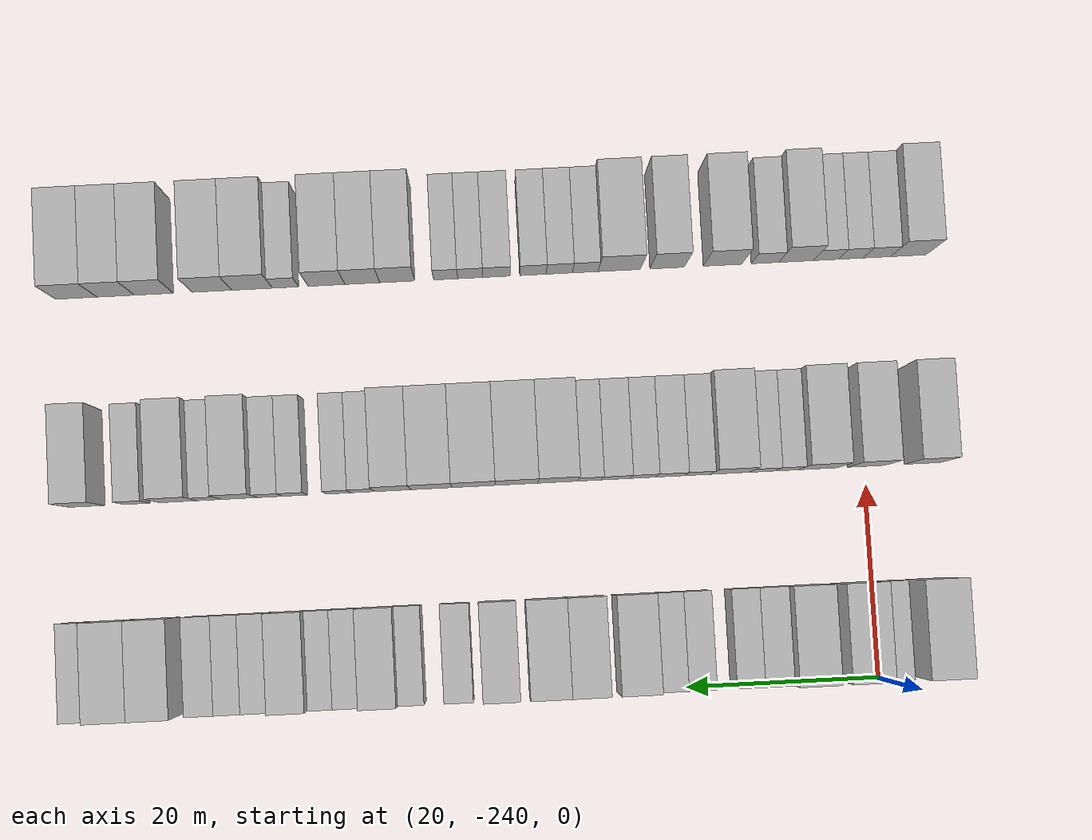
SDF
<sdf version="1.6">
 <world name="default">
  <model name="building_1">
   <static>1</static>
   <pose>25.0000 -245.7570 0 0.000000 0.000000 0.000000</pose>
   <link name="link">
    <pose>0 0 4.50 0 0 0</pose>
    <collision name="collision"><geometry><box><size>10.0000 4.4859 9.0000</size></box></geometry></collision>
    <visual name="visual">
     <cast_shadows>0</cast_shadows>
     <geometry><box><size>10.0000 4.4859 9.0000</size></box></geometry>
     <material>
      <script>
       <uri>model://HANNAS_wall/materials/scripts</uri>
       <uri>model://HANNAS_wall/materials/textures</uri>
       <name>vrc/HANNAS_wall</name>
      </script>
     </material>
    </visual>
   </link>
  </model>
  <model name="building_2">
   <static>1</static>
   <pose>25.0000 -241.2803 0 0.000000 0.000000 0.000000</pose>
   <link name="link">
    <pose>0 0 3.00 0 0 0</pose>
    <collision name="collision"><geometry><box><size>10.0000 2.4675 6.0000</size></box></geometry></collision>
    <visual name="visual">
     <cast_shadows>0</cast_shadows>
     <geometry><box><size>10.0000 2.4675 6.0000</size></box></geometry>
     <material>
      <script>
       <uri>model://HANNAS_wall/materials/scripts</uri>
       <uri>model://HANNAS_wall/materials/textures</uri>
       <name>vrc/HANNAS_wall</name>
      </script>
     </material>
    </visual>
   </link>
  </model>
  <model name="building_3">
   <static>1</static>
   <pose>25.0000 -237.8687 0 0.000000 0.000000 0.000000</pose>
   <link name="link">
    <pose>0 0 4.50 0 0 0</pose>
    <collision name="collision"><geometry><box><size>10.0000 4.3557 9.0000</size></box></geometry></collision>
    <visual name="visual">
     <cast_shadows>0</cast_shadows>
     <geometry><box><size>10.0000 4.3557 9.0000</size></box></geometry>
     <material>
      <script>
       <uri>model://HANNAS_wall/materials/scripts</uri>
       <uri>model://HANNAS_wall/materials/textures</uri>
       <name>vrc/HANNAS_wall</name>
      </script>
     </material>
    </visual>
   </link>
  </model>
  <model name="building_4">
   <static>1</static>
   <pose>25.0000 -232.5526 0 0.000000 0.000000 0.000000</pose>
   <link name="link">
    <pose>0 0 4.50 0 0 0</pose>
    <collision name="collision"><geometry><box><size>10.0000 4.2767 9.0000</size></box></geometry></collision>
    <visual name="visual">
     <cast_shadows>0</cast_shadows>
     <geometry><box><size>10.0000 4.2767 9.0000</size></box></geometry>
     <material>
      <script>
       <uri>model://HANNAS_wall/materials/scripts</uri>
       <uri>model://HANNAS_wall/materials/textures</uri>
       <name>vrc/HANNAS_wall</name>
      </script>
     </material>
    </visual>
   </link>
  </model>
  <model name="building_5">
   <static>1</static>
   <pose>25.0000 -228.9279 0 0.000000 0.000000 0.000000</pose>
   <link name="link">
    <pose>0 0 3.00 0 0 0</pose>
    <collision name="collision"><geometry><box><size>10.0000 2.9727 6.0000</size></box></geometry></collision>
    <visual name="visual">
     <cast_shadows>0</cast_shadows>
     <geometry><box><size>10.0000 2.9727 6.0000</size></box></geometry>
     <material>
      <script>
       <uri>model://HANNAS_wall/materials/scripts</uri>
       <uri>model://HANNAS_wall/materials/textures</uri>
       <name>vrc/HANNAS_wall</name>
      </script>
     </material>
    </visual>
   </link>
  </model>
  <model name="building_6">
   <static>1</static>
   <pose>25.0000 -226.0034 0 0.000000 0.000000 0.000000</pose>
   <link name="link">
    <pose>0 0 3.00 0 0 0</pose>
    <collision name="collision"><geometry><box><size>10.0000 2.8763 6.0000</size></box></geometry></collision>
    <visual name="visual">
     <cast_shadows>0</cast_shadows>
     <geometry><box><size>10.0000 2.8763 6.0000</size></box></geometry>
     <material>
      <script>
       <uri>model://HANNAS_wall/materials/scripts</uri>
       <uri>model://HANNAS_wall/materials/textures</uri>
       <name>vrc/HANNAS_wall</name>
      </script>
     </material>
    </visual>
   </link>
  </model>
  <model name="building_7">
   <static>1</static>
   <pose>25.0000 -221.1476 0 0.000000 0.000000 0.000000</pose>
   <link name="link">
    <pose>0 0 3.00 0 0 0</pose>
    <collision name="collision"><geometry><box><size>10.0000 2.8353 6.0000</size></box></geometry></collision>
    <visual name="visual">
     <cast_shadows>0</cast_shadows>
     <geometry><box><size>10.0000 2.8353 6.0000</size></box></geometry>
     <material>
      <script>
       <uri>model://HANNAS_wall/materials/scripts</uri>
       <uri>model://HANNAS_wall/materials/textures</uri>
       <name>vrc/HANNAS_wall</name>
      </script>
     </material>
    </visual>
   </link>
  </model>
  <model name="building_8">
   <static>1</static>
   <pose>25.0000 -218.2944 0 0.000000 0.000000 0.000000</pose>
   <link name="link">
    <pose>0 0 3.00 0 0 0</pose>
    <collision name="collision"><geometry><box><size>10.0000 2.8711 6.0000</size></box></geometry></collision>
    <visual name="visual">
     <cast_shadows>0</cast_shadows>
     <geometry><box><size>10.0000 2.8711 6.0000</size></box></geometry>
     <material>
      <script>
       <uri>model://HANNAS_wall/materials/scripts</uri>
       <uri>model://HANNAS_wall/materials/textures</uri>
       <name>vrc/HANNAS_wall</name>
      </script>
     </material>
    </visual>
   </link>
  </model>
  <model name="building_9">
   <static>1</static>
   <pose>25.0000 -214.8184 0 0.000000 0.000000 0.000000</pose>
   <link name="link">
    <pose>0 0 4.50 0 0 0</pose>
    <collision name="collision"><geometry><box><size>10.0000 4.0810 9.0000</size></box></geometry></collision>
    <visual name="visual">
     <cast_shadows>0</cast_shadows>
     <geometry><box><size>10.0000 4.0810 9.0000</size></box></geometry>
     <material>
      <script>
       <uri>model://HANNAS_wall/materials/scripts</uri>
       <uri>model://HANNAS_wall/materials/textures</uri>
       <name>vrc/HANNAS_wall</name>
      </script>
     </material>
    </visual>
   </link>
  </model>
  <model name="building_10">
   <static>1</static>
   <pose>25.0000 -209.8260 0 0.000000 0.000000 0.000000</pose>
   <link name="link">
    <pose>0 0 4.50 0 0 0</pose>
    <collision name="collision"><geometry><box><size>10.0000 3.9037 9.0000</size></box></geometry></collision>
    <visual name="visual">
     <cast_shadows>0</cast_shadows>
     <geometry><box><size>10.0000 3.9037 9.0000</size></box></geometry>
     <material>
      <script>
       <uri>model://HANNAS_wall/materials/scripts</uri>
       <uri>model://HANNAS_wall/materials/textures</uri>
       <name>vrc/HANNAS_wall</name>
      </script>
     </material>
    </visual>
   </link>
  </model>
  <model name="building_11">
   <static>1</static>
   <pose>25.0000 -205.7910 0 0.000000 0.000000 0.000000</pose>
   <link name="link">
    <pose>0 0 4.50 0 0 0</pose>
    <collision name="collision"><geometry><box><size>10.0000 4.1664 9.0000</size></box></geometry></collision>
    <visual name="visual">
     <cast_shadows>0</cast_shadows>
     <geometry><box><size>10.0000 4.1664 9.0000</size></box></geometry>
     <material>
      <script>
       <uri>model://HANNAS_wall/materials/scripts</uri>
       <uri>model://HANNAS_wall/materials/textures</uri>
       <name>vrc/HANNAS_wall</name>
      </script>
     </material>
    </visual>
   </link>
  </model>
  <model name="building_12">
   <static>1</static>
   <pose>25.0000 -200.8387 0 0.000000 0.000000 0.000000</pose>
   <link name="link">
    <pose>0 0 4.50 0 0 0</pose>
    <collision name="collision"><geometry><box><size>10.0000 3.7381 9.0000</size></box></geometry></collision>
    <visual name="visual">
     <cast_shadows>0</cast_shadows>
     <geometry><box><size>10.0000 3.7381 9.0000</size></box></geometry>
     <material>
      <script>
       <uri>model://HANNAS_wall/materials/scripts</uri>
       <uri>model://HANNAS_wall/materials/textures</uri>
       <name>vrc/HANNAS_wall</name>
      </script>
     </material>
    </visual>
   </link>
  </model>
  <model name="building_13">
   <static>1</static>
   <pose>25.0000 -196.4818 0 0.000000 0.000000 0.000000</pose>
   <link name="link">
    <pose>0 0 3.00 0 0 0</pose>
    <collision name="collision"><geometry><box><size>10.0000 2.9758 6.0000</size></box></geometry></collision>
    <visual name="visual">
     <cast_shadows>0</cast_shadows>
     <geometry><box><size>10.0000 2.9758 6.0000</size></box></geometry>
     <material>
      <script>
       <uri>model://HANNAS_wall/materials/scripts</uri>
       <uri>model://HANNAS_wall/materials/textures</uri>
       <name>vrc/HANNAS_wall</name>
      </script>
     </material>
    </visual>
   </link>
  </model>
  <model name="building_14">
   <static>1</static>
   <pose>25.0000 -191.6625 0 0.000000 0.000000 0.000000</pose>
   <link name="link">
    <pose>0 0 3.00 0 0 0</pose>
    <collision name="collision"><geometry><box><size>10.0000 2.6628 6.0000</size></box></geometry></collision>
    <visual name="visual">
     <cast_shadows>0</cast_shadows>
     <geometry><box><size>10.0000 2.6628 6.0000</size></box></geometry>
     <material>
      <script>
       <uri>model://HANNAS_wall/materials/scripts</uri>
       <uri>model://HANNAS_wall/materials/textures</uri>
       <name>vrc/HANNAS_wall</name>
      </script>
     </material>
    </visual>
   </link>
  </model>
  <model name="building_15">
   <static>1</static>
   <pose>25.0000 -188.4330 0 0.000000 0.000000 0.000000</pose>
   <link name="link">
    <pose>0 0 4.50 0 0 0</pose>
    <collision name="collision"><geometry><box><size>10.0000 3.7962 9.0000</size></box></geometry></collision>
    <visual name="visual">
     <cast_shadows>0</cast_shadows>
     <geometry><box><size>10.0000 3.7962 9.0000</size></box></geometry>
     <material>
      <script>
       <uri>model://HANNAS_wall/materials/scripts</uri>
       <uri>model://HANNAS_wall/materials/textures</uri>
       <name>vrc/HANNAS_wall</name>
      </script>
     </material>
    </visual>
   </link>
  </model>
  <model name="building_16">
   <static>1</static>
   <pose>25.0000 -185.1406 0 0.000000 0.000000 0.000000</pose>
   <link name="link">
    <pose>0 0 3.00 0 0 0</pose>
    <collision name="collision"><geometry><box><size>10.0000 2.7887 6.0000</size></box></geometry></collision>
    <visual name="visual">
     <cast_shadows>0</cast_shadows>
     <geometry><box><size>10.0000 2.7887 6.0000</size></box></geometry>
     <material>
      <script>
       <uri>model://HANNAS_wall/materials/scripts</uri>
       <uri>model://HANNAS_wall/materials/textures</uri>
       <name>vrc/HANNAS_wall</name>
      </script>
     </material>
    </visual>
   </link>
  </model>
  <model name="building_17">
   <static>1</static>
   <pose>25.0000 -182.4966 0 0.000000 0.000000 0.000000</pose>
   <link name="link">
    <pose>0 0 3.00 0 0 0</pose>
    <collision name="collision"><geometry><box><size>10.0000 2.4991 6.0000</size></box></geometry></collision>
    <visual name="visual">
     <cast_shadows>0</cast_shadows>
     <geometry><box><size>10.0000 2.4991 6.0000</size></box></geometry>
     <material>
      <script>
       <uri>model://HANNAS_wall/materials/scripts</uri>
       <uri>model://HANNAS_wall/materials/textures</uri>
       <name>vrc/HANNAS_wall</name>
      </script>
     </material>
    </visual>
   </link>
  </model>
  <model name="building_18">
   <static>1</static>
   <pose>25.0000 -179.3472 0 0.000000 0.000000 0.000000</pose>
   <link name="link">
    <pose>0 0 4.50 0 0 0</pose>
    <collision name="collision"><geometry><box><size>10.0000 3.7998 9.0000</size></box></geometry></collision>
    <visual name="visual">
     <cast_shadows>0</cast_shadows>
     <geometry><box><size>10.0000 3.7998 9.0000</size></box></geometry>
     <material>
      <script>
       <uri>model://HANNAS_wall/materials/scripts</uri>
       <uri>model://HANNAS_wall/materials/textures</uri>
       <name>vrc/HANNAS_wall</name>
      </script>
     </material>
    </visual>
   </link>
  </model>
  <model name="building_19">
   <static>1</static>
   <pose>25.0000 -175.9523 0 0.000000 0.000000 0.000000</pose>
   <link name="link">
    <pose>0 0 3.00 0 0 0</pose>
    <collision name="collision"><geometry><box><size>10.0000 2.9900 6.0000</size></box></geometry></collision>
    <visual name="visual">
     <cast_shadows>0</cast_shadows>
     <geometry><box><size>10.0000 2.9900 6.0000</size></box></geometry>
     <material>
      <script>
       <uri>model://HANNAS_wall/materials/scripts</uri>
       <uri>model://HANNAS_wall/materials/textures</uri>
       <name>vrc/HANNAS_wall</name>
      </script>
     </material>
    </visual>
   </link>
  </model>
  <model name="building_20">
   <static>1</static>
   <pose>25.0000 -173.1057 0 0.000000 0.000000 0.000000</pose>
   <link name="link">
    <pose>0 0 3.00 0 0 0</pose>
    <collision name="collision"><geometry><box><size>10.0000 2.7034 6.0000</size></box></geometry></collision>
    <visual name="visual">
     <cast_shadows>0</cast_shadows>
     <geometry><box><size>10.0000 2.7034 6.0000</size></box></geometry>
     <material>
      <script>
       <uri>model://HANNAS_wall/materials/scripts</uri>
       <uri>model://HANNAS_wall/materials/textures</uri>
       <name>vrc/HANNAS_wall</name>
      </script>
     </material>
    </visual>
   </link>
  </model>
  <model name="building_21">
   <static>1</static>
   <pose>25.0000 -170.2709 0 0.000000 0.000000 0.000000</pose>
   <link name="link">
    <pose>0 0 3.00 0 0 0</pose>
    <collision name="collision"><geometry><box><size>10.0000 2.9663 6.0000</size></box></geometry></collision>
    <visual name="visual">
     <cast_shadows>0</cast_shadows>
     <geometry><box><size>10.0000 2.9663 6.0000</size></box></geometry>
     <material>
      <script>
       <uri>model://HANNAS_wall/materials/scripts</uri>
       <uri>model://HANNAS_wall/materials/textures</uri>
       <name>vrc/HANNAS_wall</name>
      </script>
     </material>
    </visual>
   </link>
  </model>
  <model name="building_22">
   <static>1</static>
   <pose>25.0000 -165.6557 0 0.000000 0.000000 0.000000</pose>
   <link name="link">
    <pose>0 0 4.50 0 0 0</pose>
    <collision name="collision"><geometry><box><size>10.0000 4.2640 9.0000</size></box></geometry></collision>
    <visual name="visual">
     <cast_shadows>0</cast_shadows>
     <geometry><box><size>10.0000 4.2640 9.0000</size></box></geometry>
     <material>
      <script>
       <uri>model://HANNAS_wall/materials/scripts</uri>
       <uri>model://HANNAS_wall/materials/textures</uri>
       <name>vrc/HANNAS_wall</name>
      </script>
     </material>
    </visual>
   </link>
  </model>
  <model name="building_23">
   <static>1</static>
   <pose>25.0000 -161.3009 0 0.000000 0.000000 0.000000</pose>
   <link name="link">
    <pose>0 0 4.50 0 0 0</pose>
    <collision name="collision"><geometry><box><size>10.0000 4.4455 9.0000</size></box></geometry></collision>
    <visual name="visual">
     <cast_shadows>0</cast_shadows>
     <geometry><box><size>10.0000 4.4455 9.0000</size></box></geometry>
     <material>
      <script>
       <uri>model://HANNAS_wall/materials/scripts</uri>
       <uri>model://HANNAS_wall/materials/textures</uri>
       <name>vrc/HANNAS_wall</name>
      </script>
     </material>
    </visual>
   </link>
  </model>
  <model name="building_24">
   <static>1</static>
   <pose>25.0000 -157.6015 0 0.000000 0.000000 0.000000</pose>
   <link name="link">
    <pose>0 0 3.00 0 0 0</pose>
    <collision name="collision"><geometry><box><size>10.0000 2.9533 6.0000</size></box></geometry></collision>
    <visual name="visual">
     <cast_shadows>0</cast_shadows>
     <geometry><box><size>10.0000 2.9533 6.0000</size></box></geometry>
     <material>
      <script>
       <uri>model://HANNAS_wall/materials/scripts</uri>
       <uri>model://HANNAS_wall/materials/textures</uri>
       <name>vrc/HANNAS_wall</name>
      </script>
     </material>
    </visual>
   </link>
  </model>
  <model name="building_125">
   <static>1</static>
   <pose>47.0000 -246.0812 0 0.000000 0.000000 0.000000</pose>
   <link name="link">
    <pose>0 0 4.50 0 0 0</pose>
    <collision name="collision"><geometry><box><size>10.0000 3.8375 9.0000</size></box></geometry></collision>
    <visual name="visual">
     <cast_shadows>0</cast_shadows>
     <geometry><box><size>10.0000 3.8375 9.0000</size></box></geometry>
     <material>
      <script>
       <uri>model://HANNAS_wall/materials/scripts</uri>
       <uri>model://HANNAS_wall/materials/textures</uri>
       <name>vrc/HANNAS_wall</name>
      </script>
     </material>
    </visual>
   </link>
  </model>
  <model name="building_126">
   <static>1</static>
   <pose>47.0000 -240.1711 0 0.000000 0.000000 0.000000</pose>
   <link name="link">
    <pose>0 0 4.50 0 0 0</pose>
    <collision name="collision"><geometry><box><size>10.0000 3.9828 9.0000</size></box></geometry></collision>
    <visual name="visual">
     <cast_shadows>0</cast_shadows>
     <geometry><box><size>10.0000 3.9828 9.0000</size></box></geometry>
     <material>
      <script>
       <uri>model://HANNAS_wall/materials/scripts</uri>
       <uri>model://HANNAS_wall/materials/textures</uri>
       <name>vrc/HANNAS_wall</name>
      </script>
     </material>
    </visual>
   </link>
  </model>
  <model name="building_127">
   <static>1</static>
   <pose>47.0000 -235.0983 0 0.000000 0.000000 0.000000</pose>
   <link name="link">
    <pose>0 0 4.50 0 0 0</pose>
    <collision name="collision"><geometry><box><size>10.0000 4.1626 9.0000</size></box></geometry></collision>
    <visual name="visual">
     <cast_shadows>0</cast_shadows>
     <geometry><box><size>10.0000 4.1626 9.0000</size></box></geometry>
     <material>
      <script>
       <uri>model://HANNAS_wall/materials/scripts</uri>
       <uri>model://HANNAS_wall/materials/textures</uri>
       <name>vrc/HANNAS_wall</name>
      </script>
     </material>
    </visual>
   </link>
  </model>
  <model name="building_128">
   <static>1</static>
   <pose>47.0000 -231.7778 0 0.000000 0.000000 0.000000</pose>
   <link name="link">
    <pose>0 0 3.00 0 0 0</pose>
    <collision name="collision"><geometry><box><size>10.0000 2.4783 6.0000</size></box></geometry></collision>
    <visual name="visual">
     <cast_shadows>0</cast_shadows>
     <geometry><box><size>10.0000 2.4783 6.0000</size></box></geometry>
     <material>
      <script>
       <uri>model://HANNAS_wall/materials/scripts</uri>
       <uri>model://HANNAS_wall/materials/textures</uri>
       <name>vrc/HANNAS_wall</name>
      </script>
     </material>
    </visual>
   </link>
  </model>
  <model name="building_129">
   <static>1</static>
   <pose>47.0000 -229.1989 0 0.000000 0.000000 0.000000</pose>
   <link name="link">
    <pose>0 0 3.00 0 0 0</pose>
    <collision name="collision"><geometry><box><size>10.0000 2.6796 6.0000</size></box></geometry></collision>
    <visual name="visual">
     <cast_shadows>0</cast_shadows>
     <geometry><box><size>10.0000 2.6796 6.0000</size></box></geometry>
     <material>
      <script>
       <uri>model://HANNAS_wall/materials/scripts</uri>
       <uri>model://HANNAS_wall/materials/textures</uri>
       <name>vrc/HANNAS_wall</name>
      </script>
     </material>
    </visual>
   </link>
  </model>
  <model name="building_130">
   <static>1</static>
   <pose>47.0000 -225.8157 0 0.000000 0.000000 0.000000</pose>
   <link name="link">
    <pose>0 0 4.50 0 0 0</pose>
    <collision name="collision"><geometry><box><size>10.0000 4.0868 9.0000</size></box></geometry></collision>
    <visual name="visual">
     <cast_shadows>0</cast_shadows>
     <geometry><box><size>10.0000 4.0868 9.0000</size></box></geometry>
     <material>
      <script>
       <uri>model://HANNAS_wall/materials/scripts</uri>
       <uri>model://HANNAS_wall/materials/textures</uri>
       <name>vrc/HANNAS_wall</name>
      </script>
     </material>
    </visual>
   </link>
  </model>
  <model name="building_131">
   <static>1</static>
   <pose>47.0000 -222.4098 0 0.000000 0.000000 0.000000</pose>
   <link name="link">
    <pose>0 0 3.00 0 0 0</pose>
    <collision name="collision"><geometry><box><size>10.0000 2.7250 6.0000</size></box></geometry></collision>
    <visual name="visual">
     <cast_shadows>0</cast_shadows>
     <geometry><box><size>10.0000 2.7250 6.0000</size></box></geometry>
     <material>
      <script>
       <uri>model://HANNAS_wall/materials/scripts</uri>
       <uri>model://HANNAS_wall/materials/textures</uri>
       <name>vrc/HANNAS_wall</name>
      </script>
     </material>
    </visual>
   </link>
  </model>
  <model name="building_132">
   <static>1</static>
   <pose>47.0000 -219.5492 0 0.000000 0.000000 0.000000</pose>
   <link name="link">
    <pose>0 0 3.00 0 0 0</pose>
    <collision name="collision"><geometry><box><size>10.0000 2.9961 6.0000</size></box></geometry></collision>
    <visual name="visual">
     <cast_shadows>0</cast_shadows>
     <geometry><box><size>10.0000 2.9961 6.0000</size></box></geometry>
     <material>
      <script>
       <uri>model://HANNAS_wall/materials/scripts</uri>
       <uri>model://HANNAS_wall/materials/textures</uri>
       <name>vrc/HANNAS_wall</name>
      </script>
     </material>
    </visual>
   </link>
  </model>
  <model name="building_133">
   <static>1</static>
   <pose>47.0000 -216.7021 0 0.000000 0.000000 0.000000</pose>
   <link name="link">
    <pose>0 0 3.00 0 0 0</pose>
    <collision name="collision"><geometry><box><size>10.0000 2.6981 6.0000</size></box></geometry></collision>
    <visual name="visual">
     <cast_shadows>0</cast_shadows>
     <geometry><box><size>10.0000 2.6981 6.0000</size></box></geometry>
     <material>
      <script>
       <uri>model://HANNAS_wall/materials/scripts</uri>
       <uri>model://HANNAS_wall/materials/textures</uri>
       <name>vrc/HANNAS_wall</name>
      </script>
     </material>
    </visual>
   </link>
  </model>
  <model name="building_134">
   <static>1</static>
   <pose>47.0000 -213.8755 0 0.000000 0.000000 0.000000</pose>
   <link name="link">
    <pose>0 0 3.00 0 0 0</pose>
    <collision name="collision"><geometry><box><size>10.0000 2.9553 6.0000</size></box></geometry></collision>
    <visual name="visual">
     <cast_shadows>0</cast_shadows>
     <geometry><box><size>10.0000 2.9553 6.0000</size></box></geometry>
     <material>
      <script>
       <uri>model://HANNAS_wall/materials/scripts</uri>
       <uri>model://HANNAS_wall/materials/textures</uri>
       <name>vrc/HANNAS_wall</name>
      </script>
     </material>
    </visual>
   </link>
  </model>
  <model name="building_135">
   <static>1</static>
   <pose>47.0000 -211.1190 0 0.000000 0.000000 0.000000</pose>
   <link name="link">
    <pose>0 0 3.00 0 0 0</pose>
    <collision name="collision"><geometry><box><size>10.0000 2.5577 6.0000</size></box></geometry></collision>
    <visual name="visual">
     <cast_shadows>0</cast_shadows>
     <geometry><box><size>10.0000 2.5577 6.0000</size></box></geometry>
     <material>
      <script>
       <uri>model://HANNAS_wall/materials/scripts</uri>
       <uri>model://HANNAS_wall/materials/textures</uri>
       <name>vrc/HANNAS_wall</name>
      </script>
     </material>
    </visual>
   </link>
  </model>
  <model name="building_136">
   <static>1</static>
   <pose>47.0000 -207.7666 0 0.000000 0.000000 0.000000</pose>
   <link name="link">
    <pose>0 0 4.50 0 0 0</pose>
    <collision name="collision"><geometry><box><size>10.0000 4.1471 9.0000</size></box></geometry></collision>
    <visual name="visual">
     <cast_shadows>0</cast_shadows>
     <geometry><box><size>10.0000 4.1471 9.0000</size></box></geometry>
     <material>
      <script>
       <uri>model://HANNAS_wall/materials/scripts</uri>
       <uri>model://HANNAS_wall/materials/textures</uri>
       <name>vrc/HANNAS_wall</name>
      </script>
     </material>
    </visual>
   </link>
  </model>
  <model name="building_137">
   <static>1</static>
   <pose>47.0000 -203.4831 0 0.000000 0.000000 0.000000</pose>
   <link name="link">
    <pose>0 0 4.50 0 0 0</pose>
    <collision name="collision"><geometry><box><size>10.0000 4.4199 9.0000</size></box></geometry></collision>
    <visual name="visual">
     <cast_shadows>0</cast_shadows>
     <geometry><box><size>10.0000 4.4199 9.0000</size></box></geometry>
     <material>
      <script>
       <uri>model://HANNAS_wall/materials/scripts</uri>
       <uri>model://HANNAS_wall/materials/textures</uri>
       <name>vrc/HANNAS_wall</name>
      </script>
     </material>
    </visual>
   </link>
  </model>
  <model name="building_138">
   <static>1</static>
   <pose>47.0000 -199.0333 0 0.000000 0.000000 0.000000</pose>
   <link name="link">
    <pose>0 0 4.50 0 0 0</pose>
    <collision name="collision"><geometry><box><size>10.0000 4.4798 9.0000</size></box></geometry></collision>
    <visual name="visual">
     <cast_shadows>0</cast_shadows>
     <geometry><box><size>10.0000 4.4798 9.0000</size></box></geometry>
     <material>
      <script>
       <uri>model://HANNAS_wall/materials/scripts</uri>
       <uri>model://HANNAS_wall/materials/textures</uri>
       <name>vrc/HANNAS_wall</name>
      </script>
     </material>
    </visual>
   </link>
  </model>
  <model name="building_139">
   <static>1</static>
   <pose>47.0000 -194.6422 0 0.000000 0.000000 0.000000</pose>
   <link name="link">
    <pose>0 0 4.50 0 0 0</pose>
    <collision name="collision"><geometry><box><size>10.0000 4.3023 9.0000</size></box></geometry></collision>
    <visual name="visual">
     <cast_shadows>0</cast_shadows>
     <geometry><box><size>10.0000 4.3023 9.0000</size></box></geometry>
     <material>
      <script>
       <uri>model://HANNAS_wall/materials/scripts</uri>
       <uri>model://HANNAS_wall/materials/textures</uri>
       <name>vrc/HANNAS_wall</name>
      </script>
     </material>
    </visual>
   </link>
  </model>
  <model name="building_140">
   <static>1</static>
   <pose>47.0000 -190.5920 0 0.000000 0.000000 0.000000</pose>
   <link name="link">
    <pose>0 0 4.50 0 0 0</pose>
    <collision name="collision"><geometry><box><size>10.0000 3.7982 9.0000</size></box></geometry></collision>
    <visual name="visual">
     <cast_shadows>0</cast_shadows>
     <geometry><box><size>10.0000 3.7982 9.0000</size></box></geometry>
     <material>
      <script>
       <uri>model://HANNAS_wall/materials/scripts</uri>
       <uri>model://HANNAS_wall/materials/textures</uri>
       <name>vrc/HANNAS_wall</name>
      </script>
     </material>
    </visual>
   </link>
  </model>
  <model name="building_141">
   <static>1</static>
   <pose>47.0000 -187.4322 0 0.000000 0.000000 0.000000</pose>
   <link name="link">
    <pose>0 0 3.00 0 0 0</pose>
    <collision name="collision"><geometry><box><size>10.0000 2.5213 6.0000</size></box></geometry></collision>
    <visual name="visual">
     <cast_shadows>0</cast_shadows>
     <geometry><box><size>10.0000 2.5213 6.0000</size></box></geometry>
     <material>
      <script>
       <uri>model://HANNAS_wall/materials/scripts</uri>
       <uri>model://HANNAS_wall/materials/textures</uri>
       <name>vrc/HANNAS_wall</name>
      </script>
     </material>
    </visual>
   </link>
  </model>
  <model name="building_142">
   <static>1</static>
   <pose>47.0000 -184.9079 0 0.000000 0.000000 0.000000</pose>
   <link name="link">
    <pose>0 0 3.00 0 0 0</pose>
    <collision name="collision"><geometry><box><size>10.0000 2.5274 6.0000</size></box></geometry></collision>
    <visual name="visual">
     <cast_shadows>0</cast_shadows>
     <geometry><box><size>10.0000 2.5274 6.0000</size></box></geometry>
     <material>
      <script>
       <uri>model://HANNAS_wall/materials/scripts</uri>
       <uri>model://HANNAS_wall/materials/textures</uri>
       <name>vrc/HANNAS_wall</name>
      </script>
     </material>
    </visual>
   </link>
  </model>
  <model name="building_143">
   <static>1</static>
   <pose>47.0000 -180.3499 0 0.000000 0.000000 0.000000</pose>
   <link name="link">
    <pose>0 0 3.00 0 0 0</pose>
    <collision name="collision"><geometry><box><size>10.0000 2.5887 6.0000</size></box></geometry></collision>
    <visual name="visual">
     <cast_shadows>0</cast_shadows>
     <geometry><box><size>10.0000 2.5887 6.0000</size></box></geometry>
     <material>
      <script>
       <uri>model://HANNAS_wall/materials/scripts</uri>
       <uri>model://HANNAS_wall/materials/textures</uri>
       <name>vrc/HANNAS_wall</name>
      </script>
     </material>
    </visual>
   </link>
  </model>
  <model name="building_144">
   <static>1</static>
   <pose>47.0000 -177.7322 0 0.000000 0.000000 0.000000</pose>
   <link name="link">
    <pose>0 0 3.00 0 0 0</pose>
    <collision name="collision"><geometry><box><size>10.0000 2.6468 6.0000</size></box></geometry></collision>
    <visual name="visual">
     <cast_shadows>0</cast_shadows>
     <geometry><box><size>10.0000 2.6468 6.0000</size></box></geometry>
     <material>
      <script>
       <uri>model://HANNAS_wall/materials/scripts</uri>
       <uri>model://HANNAS_wall/materials/textures</uri>
       <name>vrc/HANNAS_wall</name>
      </script>
     </material>
    </visual>
   </link>
  </model>
  <model name="building_145">
   <static>1</static>
   <pose>47.0000 -174.5449 0 0.000000 0.000000 0.000000</pose>
   <link name="link">
    <pose>0 0 4.50 0 0 0</pose>
    <collision name="collision"><geometry><box><size>10.0000 3.7277 9.0000</size></box></geometry></collision>
    <visual name="visual">
     <cast_shadows>0</cast_shadows>
     <geometry><box><size>10.0000 3.7277 9.0000</size></box></geometry>
     <material>
      <script>
       <uri>model://HANNAS_wall/materials/scripts</uri>
       <uri>model://HANNAS_wall/materials/textures</uri>
       <name>vrc/HANNAS_wall</name>
      </script>
     </material>
    </visual>
   </link>
  </model>
  <model name="building_146">
   <static>1</static>
   <pose>47.0000 -171.3803 0 0.000000 0.000000 0.000000</pose>
   <link name="link">
    <pose>0 0 3.00 0 0 0</pose>
    <collision name="collision"><geometry><box><size>10.0000 2.6017 6.0000</size></box></geometry></collision>
    <visual name="visual">
     <cast_shadows>0</cast_shadows>
     <geometry><box><size>10.0000 2.6017 6.0000</size></box></geometry>
     <material>
      <script>
       <uri>model://HANNAS_wall/materials/scripts</uri>
       <uri>model://HANNAS_wall/materials/textures</uri>
       <name>vrc/HANNAS_wall</name>
      </script>
     </material>
    </visual>
   </link>
  </model>
  <model name="building_147">
   <static>1</static>
   <pose>47.0000 -168.1170 0 0.000000 0.000000 0.000000</pose>
   <link name="link">
    <pose>0 0 4.50 0 0 0</pose>
    <collision name="collision"><geometry><box><size>10.0000 3.9248 9.0000</size></box></geometry></collision>
    <visual name="visual">
     <cast_shadows>0</cast_shadows>
     <geometry><box><size>10.0000 3.9248 9.0000</size></box></geometry>
     <material>
      <script>
       <uri>model://HANNAS_wall/materials/scripts</uri>
       <uri>model://HANNAS_wall/materials/textures</uri>
       <name>vrc/HANNAS_wall</name>
      </script>
     </material>
    </visual>
   </link>
  </model>
  <model name="building_148">
   <static>1</static>
   <pose>47.0000 -163.7934 0 0.000000 0.000000 0.000000</pose>
   <link name="link">
    <pose>0 0 3.00 0 0 0</pose>
    <collision name="collision"><geometry><box><size>10.0000 2.7223 6.0000</size></box></geometry></collision>
    <visual name="visual">
     <cast_shadows>0</cast_shadows>
     <geometry><box><size>10.0000 2.7223 6.0000</size></box></geometry>
     <material>
      <script>
       <uri>model://HANNAS_wall/materials/scripts</uri>
       <uri>model://HANNAS_wall/materials/textures</uri>
       <name>vrc/HANNAS_wall</name>
      </script>
     </material>
    </visual>
   </link>
  </model>
  <model name="building_149">
   <static>1</static>
   <pose>47.0000 -158.5637 0 0.000000 0.000000 0.000000</pose>
   <link name="link">
    <pose>0 0 4.50 0 0 0</pose>
    <collision name="collision"><geometry><box><size>10.0000 3.7370 9.0000</size></box></geometry></collision>
    <visual name="visual">
     <cast_shadows>0</cast_shadows>
     <geometry><box><size>10.0000 3.7370 9.0000</size></box></geometry>
     <material>
      <script>
       <uri>model://HANNAS_wall/materials/scripts</uri>
       <uri>model://HANNAS_wall/materials/textures</uri>
       <name>vrc/HANNAS_wall</name>
      </script>
     </material>
    </visual>
   </link>
  </model>
  <model name="building_252">
   <static>1</static>
   <pose>69.0000 -246.1108 0 0.000000 0.000000 0.000000</pose>
   <link name="link">
    <pose>0 0 4.50 0 0 0</pose>
    <collision name="collision"><geometry><box><size>10.0000 3.7783 9.0000</size></box></geometry></collision>
    <visual name="visual">
     <cast_shadows>0</cast_shadows>
     <geometry><box><size>10.0000 3.7783 9.0000</size></box></geometry>
     <material>
      <script>
       <uri>model://HANNAS_wall/materials/scripts</uri>
       <uri>model://HANNAS_wall/materials/textures</uri>
       <name>vrc/HANNAS_wall</name>
      </script>
     </material>
    </visual>
   </link>
  </model>
  <model name="building_253">
   <static>1</static>
   <pose>69.0000 -242.7650 0 0.000000 0.000000 0.000000</pose>
   <link name="link">
    <pose>0 0 3.00 0 0 0</pose>
    <collision name="collision"><geometry><box><size>10.0000 2.9133 6.0000</size></box></geometry></collision>
    <visual name="visual">
     <cast_shadows>0</cast_shadows>
     <geometry><box><size>10.0000 2.9133 6.0000</size></box></geometry>
     <material>
      <script>
       <uri>model://HANNAS_wall/materials/scripts</uri>
       <uri>model://HANNAS_wall/materials/textures</uri>
       <name>vrc/HANNAS_wall</name>
      </script>
     </material>
    </visual>
   </link>
  </model>
  <model name="building_254">
   <static>1</static>
   <pose>69.0000 -240.0039 0 0.000000 0.000000 0.000000</pose>
   <link name="link">
    <pose>0 0 3.00 0 0 0</pose>
    <collision name="collision"><geometry><box><size>10.0000 2.6090 6.0000</size></box></geometry></collision>
    <visual name="visual">
     <cast_shadows>0</cast_shadows>
     <geometry><box><size>10.0000 2.6090 6.0000</size></box></geometry>
     <material>
      <script>
       <uri>model://HANNAS_wall/materials/scripts</uri>
       <uri>model://HANNAS_wall/materials/textures</uri>
       <name>vrc/HANNAS_wall</name>
      </script>
     </material>
    </visual>
   </link>
  </model>
  <model name="building_255">
   <static>1</static>
   <pose>69.0000 -237.3704 0 0.000000 0.000000 0.000000</pose>
   <link name="link">
    <pose>0 0 3.00 0 0 0</pose>
    <collision name="collision"><geometry><box><size>10.0000 2.6579 6.0000</size></box></geometry></collision>
    <visual name="visual">
     <cast_shadows>0</cast_shadows>
     <geometry><box><size>10.0000 2.6579 6.0000</size></box></geometry>
     <material>
      <script>
       <uri>model://HANNAS_wall/materials/scripts</uri>
       <uri>model://HANNAS_wall/materials/textures</uri>
       <name>vrc/HANNAS_wall</name>
      </script>
     </material>
    </visual>
   </link>
  </model>
  <model name="building_256">
   <static>1</static>
   <pose>69.0000 -234.2207 0 0.000000 0.000000 0.000000</pose>
   <link name="link">
    <pose>0 0 4.50 0 0 0</pose>
    <collision name="collision"><geometry><box><size>10.0000 3.6414 9.0000</size></box></geometry></collision>
    <visual name="visual">
     <cast_shadows>0</cast_shadows>
     <geometry><box><size>10.0000 3.6414 9.0000</size></box></geometry>
     <material>
      <script>
       <uri>model://HANNAS_wall/materials/scripts</uri>
       <uri>model://HANNAS_wall/materials/textures</uri>
       <name>vrc/HANNAS_wall</name>
      </script>
     </material>
    </visual>
   </link>
  </model>
  <model name="building_257">
   <static>1</static>
   <pose>69.0000 -230.9368 0 0.000000 0.000000 0.000000</pose>
   <link name="link">
    <pose>0 0 3.00 0 0 0</pose>
    <collision name="collision"><geometry><box><size>10.0000 2.9265 6.0000</size></box></geometry></collision>
    <visual name="visual">
     <cast_shadows>0</cast_shadows>
     <geometry><box><size>10.0000 2.9265 6.0000</size></box></geometry>
     <material>
      <script>
       <uri>model://HANNAS_wall/materials/scripts</uri>
       <uri>model://HANNAS_wall/materials/textures</uri>
       <name>vrc/HANNAS_wall</name>
      </script>
     </material>
    </visual>
   </link>
  </model>
  <model name="building_258">
   <static>1</static>
   <pose>69.0000 -226.4354 0 0.000000 0.000000 0.000000</pose>
   <link name="link">
    <pose>0 0 4.50 0 0 0</pose>
    <collision name="collision"><geometry><box><size>10.0000 4.0762 9.0000</size></box></geometry></collision>
    <visual name="visual">
     <cast_shadows>0</cast_shadows>
     <geometry><box><size>10.0000 4.0762 9.0000</size></box></geometry>
     <material>
      <script>
       <uri>model://HANNAS_wall/materials/scripts</uri>
       <uri>model://HANNAS_wall/materials/textures</uri>
       <name>vrc/HANNAS_wall</name>
      </script>
     </material>
    </visual>
   </link>
  </model>
  <model name="building_259">
   <static>1</static>
   <pose>69.0000 -220.5723 0 0.000000 0.000000 0.000000</pose>
   <link name="link">
    <pose>0 0 4.50 0 0 0</pose>
    <collision name="collision"><geometry><box><size>10.0000 3.6501 9.0000</size></box></geometry></collision>
    <visual name="visual">
     <cast_shadows>0</cast_shadows>
     <geometry><box><size>10.0000 3.6501 9.0000</size></box></geometry>
     <material>
      <script>
       <uri>model://HANNAS_wall/materials/scripts</uri>
       <uri>model://HANNAS_wall/materials/textures</uri>
       <name>vrc/HANNAS_wall</name>
      </script>
     </material>
    </visual>
   </link>
  </model>
  <model name="building_260">
   <static>1</static>
   <pose>69.0000 -215.5030 0 0.000000 0.000000 0.000000</pose>
   <link name="link">
    <pose>0 0 4.50 0 0 0</pose>
    <collision name="collision"><geometry><box><size>10.0000 4.4885 9.0000</size></box></geometry></collision>
    <visual name="visual">
     <cast_shadows>0</cast_shadows>
     <geometry><box><size>10.0000 4.4885 9.0000</size></box></geometry>
     <material>
      <script>
       <uri>model://HANNAS_wall/materials/scripts</uri>
       <uri>model://HANNAS_wall/materials/textures</uri>
       <name>vrc/HANNAS_wall</name>
      </script>
     </material>
    </visual>
   </link>
  </model>
  <model name="building_261">
   <static>1</static>
   <pose>69.0000 -211.8990 0 0.000000 0.000000 0.000000</pose>
   <link name="link">
    <pose>0 0 3.00 0 0 0</pose>
    <collision name="collision"><geometry><box><size>10.0000 2.7195 6.0000</size></box></geometry></collision>
    <visual name="visual">
     <cast_shadows>0</cast_shadows>
     <geometry><box><size>10.0000 2.7195 6.0000</size></box></geometry>
     <material>
      <script>
       <uri>model://HANNAS_wall/materials/scripts</uri>
       <uri>model://HANNAS_wall/materials/textures</uri>
       <name>vrc/HANNAS_wall</name>
      </script>
     </material>
    </visual>
   </link>
  </model>
  <model name="building_262">
   <static>1</static>
   <pose>69.0000 -209.1536 0 0.000000 0.000000 0.000000</pose>
   <link name="link">
    <pose>0 0 3.00 0 0 0</pose>
    <collision name="collision"><geometry><box><size>10.0000 2.7715 6.0000</size></box></geometry></collision>
    <visual name="visual">
     <cast_shadows>0</cast_shadows>
     <geometry><box><size>10.0000 2.7715 6.0000</size></box></geometry>
     <material>
      <script>
       <uri>model://HANNAS_wall/materials/scripts</uri>
       <uri>model://HANNAS_wall/materials/textures</uri>
       <name>vrc/HANNAS_wall</name>
      </script>
     </material>
    </visual>
   </link>
  </model>
  <model name="building_263">
   <static>1</static>
   <pose>69.0000 -206.3792 0 0.000000 0.000000 0.000000</pose>
   <link name="link">
    <pose>0 0 3.00 0 0 0</pose>
    <collision name="collision"><geometry><box><size>10.0000 2.7772 6.0000</size></box></geometry></collision>
    <visual name="visual">
     <cast_shadows>0</cast_shadows>
     <geometry><box><size>10.0000 2.7772 6.0000</size></box></geometry>
     <material>
      <script>
       <uri>model://HANNAS_wall/materials/scripts</uri>
       <uri>model://HANNAS_wall/materials/textures</uri>
       <name>vrc/HANNAS_wall</name>
      </script>
     </material>
    </visual>
   </link>
  </model>
  <model name="building_264">
   <static>1</static>
   <pose>69.0000 -202.5434 0 0.000000 0.000000 0.000000</pose>
   <link name="link">
    <pose>0 0 3.00 0 0 0</pose>
    <collision name="collision"><geometry><box><size>10.0000 2.8944 6.0000</size></box></geometry></collision>
    <visual name="visual">
     <cast_shadows>0</cast_shadows>
     <geometry><box><size>10.0000 2.8944 6.0000</size></box></geometry>
     <material>
      <script>
       <uri>model://HANNAS_wall/materials/scripts</uri>
       <uri>model://HANNAS_wall/materials/textures</uri>
       <name>vrc/HANNAS_wall</name>
      </script>
     </material>
    </visual>
   </link>
  </model>
  <model name="building_265">
   <static>1</static>
   <pose>69.0000 -199.7743 0 0.000000 0.000000 0.000000</pose>
   <link name="link">
    <pose>0 0 3.00 0 0 0</pose>
    <collision name="collision"><geometry><box><size>10.0000 2.6438 6.0000</size></box></geometry></collision>
    <visual name="visual">
     <cast_shadows>0</cast_shadows>
     <geometry><box><size>10.0000 2.6438 6.0000</size></box></geometry>
     <material>
      <script>
       <uri>model://HANNAS_wall/materials/scripts</uri>
       <uri>model://HANNAS_wall/materials/textures</uri>
       <name>vrc/HANNAS_wall</name>
      </script>
     </material>
    </visual>
   </link>
  </model>
  <model name="building_266">
   <static>1</static>
   <pose>69.0000 -197.1812 0 0.000000 0.000000 0.000000</pose>
   <link name="link">
    <pose>0 0 3.00 0 0 0</pose>
    <collision name="collision"><geometry><box><size>10.0000 2.5425 6.0000</size></box></geometry></collision>
    <visual name="visual">
     <cast_shadows>0</cast_shadows>
     <geometry><box><size>10.0000 2.5425 6.0000</size></box></geometry>
     <material>
      <script>
       <uri>model://HANNAS_wall/materials/scripts</uri>
       <uri>model://HANNAS_wall/materials/textures</uri>
       <name>vrc/HANNAS_wall</name>
      </script>
     </material>
    </visual>
   </link>
  </model>
  <model name="building_267">
   <static>1</static>
   <pose>69.0000 -192.0670 0 0.000000 0.000000 0.000000</pose>
   <link name="link">
    <pose>0 0 4.50 0 0 0</pose>
    <collision name="collision"><geometry><box><size>10.0000 3.6859 9.0000</size></box></geometry></collision>
    <visual name="visual">
     <cast_shadows>0</cast_shadows>
     <geometry><box><size>10.0000 3.6859 9.0000</size></box></geometry>
     <material>
      <script>
       <uri>model://HANNAS_wall/materials/scripts</uri>
       <uri>model://HANNAS_wall/materials/textures</uri>
       <name>vrc/HANNAS_wall</name>
      </script>
     </material>
    </visual>
   </link>
  </model>
  <model name="building_268">
   <static>1</static>
   <pose>69.0000 -188.3819 0 0.000000 0.000000 0.000000</pose>
   <link name="link">
    <pose>0 0 4.50 0 0 0</pose>
    <collision name="collision"><geometry><box><size>10.0000 3.6845 9.0000</size></box></geometry></collision>
    <visual name="visual">
     <cast_shadows>0</cast_shadows>
     <geometry><box><size>10.0000 3.6845 9.0000</size></box></geometry>
     <material>
      <script>
       <uri>model://HANNAS_wall/materials/scripts</uri>
       <uri>model://HANNAS_wall/materials/textures</uri>
       <name>vrc/HANNAS_wall</name>
      </script>
     </material>
    </visual>
   </link>
  </model>
  <model name="building_269">
   <static>1</static>
   <pose>69.0000 -184.5934 0 0.000000 0.000000 0.000000</pose>
   <link name="link">
    <pose>0 0 4.50 0 0 0</pose>
    <collision name="collision"><geometry><box><size>10.0000 3.8924 9.0000</size></box></geometry></collision>
    <visual name="visual">
     <cast_shadows>0</cast_shadows>
     <geometry><box><size>10.0000 3.8924 9.0000</size></box></geometry>
     <material>
      <script>
       <uri>model://HANNAS_wall/materials/scripts</uri>
       <uri>model://HANNAS_wall/materials/textures</uri>
       <name>vrc/HANNAS_wall</name>
      </script>
     </material>
    </visual>
   </link>
  </model>
  <model name="building_270">
   <static>1</static>
   <pose>69.0000 -180.2693 0 0.000000 0.000000 0.000000</pose>
   <link name="link">
    <pose>0 0 3.00 0 0 0</pose>
    <collision name="collision"><geometry><box><size>10.0000 2.7558 6.0000</size></box></geometry></collision>
    <visual name="visual">
     <cast_shadows>0</cast_shadows>
     <geometry><box><size>10.0000 2.7558 6.0000</size></box></geometry>
     <material>
      <script>
       <uri>model://HANNAS_wall/materials/scripts</uri>
       <uri>model://HANNAS_wall/materials/textures</uri>
       <name>vrc/HANNAS_wall</name>
      </script>
     </material>
    </visual>
   </link>
  </model>
  <model name="building_271">
   <static>1</static>
   <pose>69.0000 -176.7482 0 0.000000 0.000000 0.000000</pose>
   <link name="link">
    <pose>0 0 4.50 0 0 0</pose>
    <collision name="collision"><geometry><box><size>10.0000 4.2864 9.0000</size></box></geometry></collision>
    <visual name="visual">
     <cast_shadows>0</cast_shadows>
     <geometry><box><size>10.0000 4.2864 9.0000</size></box></geometry>
     <material>
      <script>
       <uri>model://HANNAS_wall/materials/scripts</uri>
       <uri>model://HANNAS_wall/materials/textures</uri>
       <name>vrc/HANNAS_wall</name>
      </script>
     </material>
    </visual>
   </link>
  </model>
  <model name="building_272">
   <static>1</static>
   <pose>69.0000 -172.5126 0 0.000000 0.000000 0.000000</pose>
   <link name="link">
    <pose>0 0 4.50 0 0 0</pose>
    <collision name="collision"><geometry><box><size>10.0000 4.1848 9.0000</size></box></geometry></collision>
    <visual name="visual">
     <cast_shadows>0</cast_shadows>
     <geometry><box><size>10.0000 4.1848 9.0000</size></box></geometry>
     <material>
      <script>
       <uri>model://HANNAS_wall/materials/scripts</uri>
       <uri>model://HANNAS_wall/materials/textures</uri>
       <name>vrc/HANNAS_wall</name>
      </script>
     </material>
    </visual>
   </link>
  </model>
  <model name="building_273">
   <static>1</static>
   <pose>69.0000 -166.3773 0 0.000000 0.000000 0.000000</pose>
   <link name="link">
    <pose>0 0 4.50 0 0 0</pose>
    <collision name="collision"><geometry><box><size>10.0000 4.0856 9.0000</size></box></geometry></collision>
    <visual name="visual">
     <cast_shadows>0</cast_shadows>
     <geometry><box><size>10.0000 4.0856 9.0000</size></box></geometry>
     <material>
      <script>
       <uri>model://HANNAS_wall/materials/scripts</uri>
       <uri>model://HANNAS_wall/materials/textures</uri>
       <name>vrc/HANNAS_wall</name>
      </script>
     </material>
    </visual>
   </link>
  </model>
  <model name="building_274">
   <static>1</static>
   <pose>69.0000 -162.3591 0 0.000000 0.000000 0.000000</pose>
   <link name="link">
    <pose>0 0 4.50 0 0 0</pose>
    <collision name="collision"><geometry><box><size>10.0000 3.9508 9.0000</size></box></geometry></collision>
    <visual name="visual">
     <cast_shadows>0</cast_shadows>
     <geometry><box><size>10.0000 3.9508 9.0000</size></box></geometry>
     <material>
      <script>
       <uri>model://HANNAS_wall/materials/scripts</uri>
       <uri>model://HANNAS_wall/materials/textures</uri>
       <name>vrc/HANNAS_wall</name>
      </script>
     </material>
    </visual>
   </link>
  </model>
  <model name="building_275">
   <static>1</static>
   <pose>69.0000 -158.1984 0 0.000000 0.000000 0.000000</pose>
   <link name="link">
    <pose>0 0 4.50 0 0 0</pose>
    <collision name="collision"><geometry><box><size>10.0000 4.3707 9.0000</size></box></geometry></collision>
    <visual name="visual">
     <cast_shadows>0</cast_shadows>
     <geometry><box><size>10.0000 4.3707 9.0000</size></box></geometry>
     <material>
      <script>
       <uri>model://HANNAS_wall/materials/scripts</uri>
       <uri>model://HANNAS_wall/materials/textures</uri>
       <name>vrc/HANNAS_wall</name>
      </script>
     </material>
    </visual>
   </link>
  </model>
 </world>
</sdf>
